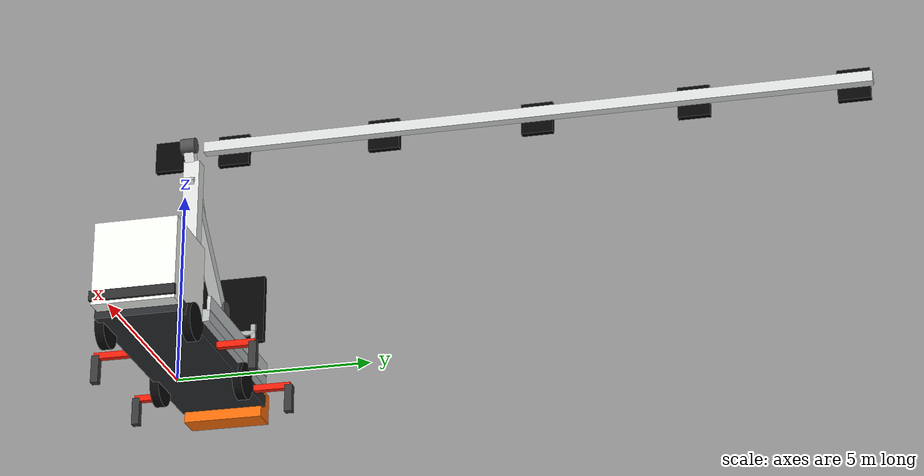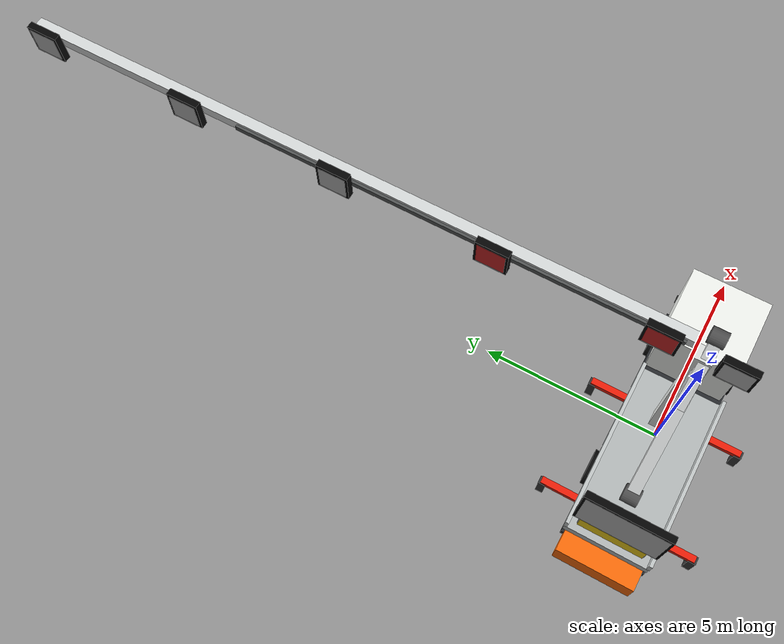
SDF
<?xml version="1.0"?>
<sdf version="1.6">
  <model name="lcs_5004">
    <!-- Keep the deployed vehicle out of physics while allowing Gazebo's
         translate / rotate manipulators to select and reposition the model. -->
    <static>false</static>
    <link name="vehicle">
      <kinematic>true</kinematic>
      <gravity>false</gravity>
      <!-- 4.5 t cab-over truck: official overall width/length are preserved. -->
      <collision name="chassis_collision">
        <pose>-0.35 0 0.70 0 0 0</pose>
        <geometry><box><size>6.70 2.24 0.30</size></box></geometry>
      </collision>
      <visual name="chassis_visual">
        <pose>-0.35 0 0.70 0 0 0</pose>
        <geometry><box><size>6.70 2.24 0.30</size></box></geometry>
        <material><ambient>0.10 0.11 0.12 1</ambient><diffuse>0.16 0.17 0.18 1</diffuse></material>
      </visual>

      <collision name="cab_collision">
        <pose>2.40 0 1.80 0 0 0</pose>
        <geometry><box><size>2.10 2.12 2.15</size></box></geometry>
      </collision>
      <visual name="cab_visual">
        <pose>2.40 0 1.80 0 0 0</pose>
        <geometry><box><size>2.10 2.12 2.15</size></box></geometry>
        <material><ambient>0.72 0.73 0.71 1</ambient><diffuse>0.96 0.97 0.95 1</diffuse><specular>0.20 0.20 0.20 1</specular></material>
      </visual>
      <visual name="front_windshield">
        <pose>1.94 0 2.30 0 0 0</pose>
        <geometry><box><size>0.025 1.92 0.78</size></box></geometry>
        <material><ambient>0.03 0.07 0.09 1</ambient><diffuse>0.08 0.18 0.23 1</diffuse><specular>0.60 0.60 0.60 1</specular></material>
      </visual>
      <visual name="left_window">
        <pose>2.54 -1.071 2.30 0 0 0</pose>
        <geometry><box><size>1.20 0.025 0.76</size></box></geometry>
        <material><ambient>0.03 0.07 0.09 1</ambient><diffuse>0.08 0.18 0.23 1</diffuse><specular>0.60 0.60 0.60 1</specular></material>
      </visual>
      <visual name="front_bumper">
        <pose>3.48 0 0.93 0 0 0</pose>
        <geometry><box><size>0.12 2.18 0.25</size></box></geometry>
        <material><ambient>0.10 0.10 0.10 1</ambient><diffuse>0.18 0.18 0.18 1</diffuse></material>
      </visual>

      <collision name="flatbed_collision">
        <pose>-1.36 0 1.25 0 0 0</pose>
        <geometry><box><size>4.70 2.24 0.32</size></box></geometry>
      </collision>
      <visual name="flatbed_visual">
        <pose>-1.36 0 1.25 0 0 0</pose>
        <geometry><box><size>4.70 2.24 0.32</size></box></geometry>
        <material><ambient>0.50 0.52 0.52 1</ambient><diffuse>0.72 0.74 0.74 1</diffuse><specular>0.45 0.45 0.45 1</specular></material>
      </visual>
      <visual name="flatbed_rail_left">
        <pose>-1.36 -1.09 1.57 0 0 0</pose>
        <geometry><box><size>4.70 0.09 0.38</size></box></geometry>
        <material><ambient>0.55 0.57 0.57 1</ambient><diffuse>0.78 0.80 0.80 1</diffuse></material>
      </visual>
      <visual name="flatbed_rail_right">
        <pose>-1.36 1.09 1.57 0 0 0</pose>
        <geometry><box><size>4.70 0.09 0.38</size></box></geometry>
        <material><ambient>0.55 0.57 0.57 1</ambient><diffuse>0.78 0.80 0.80 1</diffuse></material>
      </visual>

      <!-- Wheels; cylinder axes are aligned with vehicle Y. -->
      <visual name="wheel_front_left">
        <pose>2.25 -1.10 0.55 1.570796 0 0</pose>
        <geometry><cylinder><radius>0.48</radius><length>0.24</length></cylinder></geometry>
        <material><ambient>0.02 0.02 0.02 1</ambient><diffuse>0.04 0.04 0.04 1</diffuse></material>
      </visual>
      <visual name="wheel_front_right">
        <pose>2.25 1.10 0.55 1.570796 0 0</pose>
        <geometry><cylinder><radius>0.48</radius><length>0.24</length></cylinder></geometry>
        <material><ambient>0.02 0.02 0.02 1</ambient><diffuse>0.04 0.04 0.04 1</diffuse></material>
      </visual>
      <visual name="wheel_rear_left">
        <pose>-1.80 -1.10 0.55 1.570796 0 0</pose>
        <geometry><cylinder><radius>0.48</radius><length>0.24</length></cylinder></geometry>
        <material><ambient>0.02 0.02 0.02 1</ambient><diffuse>0.04 0.04 0.04 1</diffuse></material>
      </visual>
      <visual name="wheel_rear_right">
        <pose>-1.80 1.10 0.55 1.570796 0 0</pose>
        <geometry><cylinder><radius>0.48</radius><length>0.24</length></cylinder></geometry>
        <material><ambient>0.02 0.02 0.02 1</ambient><diffuse>0.04 0.04 0.04 1</diffuse></material>
      </visual>
      <visual name="hub_front_left">
        <pose>2.25 -1.235 0.55 1.570796 0 0</pose>
        <geometry><cylinder><radius>0.18</radius><length>0.03</length></cylinder></geometry>
        <material><ambient>0.45 0.45 0.45 1</ambient><diffuse>0.65 0.65 0.65 1</diffuse></material>
      </visual>
      <visual name="hub_rear_left">
        <pose>-1.80 -1.235 0.55 1.570796 0 0</pose>
        <geometry><cylinder><radius>0.18</radius><length>0.03</length></cylinder></geometry>
        <material><ambient>0.45 0.45 0.45 1</ambient><diffuse>0.65 0.65 0.65 1</diffuse></material>
      </visual>

      <!-- Rear impact attenuator and warning chevrons. -->
      <collision name="attenuator_collision">
        <pose>-3.92 0 0.66 0 0 0</pose>
        <geometry><box><size>0.66 2.08 0.78</size></box></geometry>
      </collision>
      <visual name="attenuator_orange">
        <pose>-3.92 0 0.66 0 0 0</pose>
        <geometry><box><size>0.66 2.08 0.78</size></box></geometry>
        <material><ambient>0.65 0.24 0.02 1</ambient><diffuse>1.00 0.43 0.04 1</diffuse></material>
      </visual>
      <visual name="rear_warning_panel">
        <pose>-3.47 0 1.72 0 0 0</pose>
        <geometry><box><size>0.12 1.72 0.64</size></box></geometry>
        <material><ambient>0.75 0.65 0.08 1</ambient><diffuse>0.98 0.84 0.10 1</diffuse></material>
      </visual>

      <!-- Four deployed outriggers. -->
      <visual name="outrigger_fl_arm">
        <pose>0.30 -1.58 0.69 0 0 0</pose>
        <geometry><box><size>0.18 1.05 0.16</size></box></geometry>
        <material><ambient>0.70 0.08 0.03 1</ambient><diffuse>0.95 0.12 0.04 1</diffuse></material>
      </visual>
      <visual name="outrigger_fr_arm">
        <pose>0.30 1.58 0.69 0 0 0</pose>
        <geometry><box><size>0.18 1.05 0.16</size></box></geometry>
        <material><ambient>0.70 0.08 0.03 1</ambient><diffuse>0.95 0.12 0.04 1</diffuse></material>
      </visual>
      <visual name="outrigger_rl_arm">
        <pose>-2.75 -1.58 0.69 0 0 0</pose>
        <geometry><box><size>0.18 1.05 0.16</size></box></geometry>
        <material><ambient>0.70 0.08 0.03 1</ambient><diffuse>0.95 0.12 0.04 1</diffuse></material>
      </visual>
      <visual name="outrigger_rr_arm">
        <pose>-2.75 1.58 0.69 0 0 0</pose>
        <geometry><box><size>0.18 1.05 0.16</size></box></geometry>
        <material><ambient>0.70 0.08 0.03 1</ambient><diffuse>0.95 0.12 0.04 1</diffuse></material>
      </visual>
      <visual name="outrigger_fl_leg">
        <pose>0.30 -2.06 0.34 0 0 0</pose>
        <geometry><box><size>0.20 0.20 0.72</size></box></geometry>
        <material><ambient>0.12 0.12 0.12 1</ambient><diffuse>0.22 0.22 0.22 1</diffuse></material>
      </visual>
      <visual name="outrigger_fr_leg">
        <pose>0.30 2.06 0.34 0 0 0</pose>
        <geometry><box><size>0.20 0.20 0.72</size></box></geometry>
        <material><ambient>0.12 0.12 0.12 1</ambient><diffuse>0.22 0.22 0.22 1</diffuse></material>
      </visual>
      <visual name="outrigger_rl_leg">
        <pose>-2.75 -2.06 0.34 0 0 0</pose>
        <geometry><box><size>0.20 0.20 0.72</size></box></geometry>
        <material><ambient>0.12 0.12 0.12 1</ambient><diffuse>0.22 0.22 0.22 1</diffuse></material>
      </visual>
      <visual name="outrigger_rr_leg">
        <pose>-2.75 2.06 0.34 0 0 0</pose>
        <geometry><box><size>0.20 0.20 0.72</size></box></geometry>
        <material><ambient>0.12 0.12 0.12 1</ambient><diffuse>0.22 0.22 0.22 1</diffuse></material>
      </visual>

      <!-- Vehicle frame: +X forward, +Y left, +Z up. The boom deploys to vehicle-left (+Y). -->
      <collision name="mast_collision">
        <pose>-0.15 0.15 3.70 0 0 0</pose>
        <geometry><box><size>0.38 0.42 4.60</size></box></geometry>
      </collision>
      <visual name="mast_visual">
        <pose>-0.15 0.15 3.70 0 0 0</pose>
        <geometry><box><size>0.38 0.42 4.60</size></box></geometry>
        <material><ambient>0.62 0.63 0.62 1</ambient><diffuse>0.88 0.89 0.88 1</diffuse></material>
      </visual>
      <visual name="lift_arm_lower">
        <pose>-1.35 0.10 4.25 0 -0.75 0</pose>
        <geometry><box><size>3.80 0.30 0.30</size></box></geometry>
        <material><ambient>0.56 0.57 0.57 1</ambient><diffuse>0.82 0.83 0.83 1</diffuse></material>
      </visual>
      <visual name="lift_arm_upper">
        <pose>-0.40 0.10 5.55 0 -1.00 0</pose>
        <geometry><box><size>2.00 0.26 0.28</size></box></geometry>
        <material><ambient>0.66 0.67 0.67 1</ambient><diffuse>0.91 0.92 0.92 1</diffuse></material>
      </visual>
      <visual name="mast_pivot_lower">
        <pose>-2.73 0.10 2.96 1.570796 0 0</pose>
        <geometry><cylinder><radius>0.22</radius><length>0.40</length></cylinder></geometry>
        <material><ambient>0.20 0.20 0.20 1</ambient><diffuse>0.32 0.32 0.32 1</diffuse></material>
      </visual>
      <visual name="mast_pivot_upper">
        <pose>0.14 0.10 6.38 1.570796 0 0</pose>
        <geometry><cylinder><radius>0.20</radius><length>0.38</length></cylinder></geometry>
        <material><ambient>0.20 0.20 0.20 1</ambient><diffuse>0.32 0.32 0.32 1</diffuse></material>
      </visual>

      <collision name="boom_collision">
        <pose>-0.12 9.05 6.38 0 0 0</pose>
        <geometry><box><size>0.28 17.20 0.28</size></box></geometry>
      </collision>
      <visual name="boom_visual">
        <pose>-0.12 9.05 6.38 0 0 0</pose>
        <geometry><box><size>0.28 17.20 0.28</size></box></geometry>
        <material><ambient>0.58 0.59 0.59 1</ambient><diffuse>0.86 0.87 0.87 1</diffuse><specular>0.35 0.35 0.35 1</specular></material>
      </visual>
      <visual name="boom_inner_visual">
        <pose>-0.29 6.25 6.38 0 0 0</pose>
        <geometry><box><size>0.08 11.20 0.14</size></box></geometry>
        <material><ambient>0.20 0.21 0.21 1</ambient><diffuse>0.33 0.34 0.34 1</diffuse></material>
      </visual>

      <!-- Five 700 mm indicators are centered on, and mounted in front of, the boom. -->
      <!-- Mesh faces keep Gazebo from treating the vehicle as a plane. Each
           indicator has one surface; its material selects the displayed signal. -->
      <visual name="panel_1_housing"><pose>-0.42 17.15 6.38 0 0 0</pose><geometry><box><size>0.18 0.82 0.82</size></box></geometry><material><ambient>0.01 0.01 0.01 1</ambient><diffuse>0.02 0.02 0.02 1</diffuse></material></visual>
      <visual name="panel_1_signal"><pose>-0.521 17.15 6.38 0 -1.570796 0</pose><geometry><mesh><uri>model://lcs_5004/meshes/signal_face.dae</uri><scale>0.70 0.70 1</scale></mesh></geometry><material><script><uri>model://lcs_5004/materials/scripts</uri><uri>model://lcs_5004/materials/textures</uri><name>LCS5004/ArrowDown</name></script></material></visual>
      <visual name="panel_2_housing"><pose>-0.42 13.15 6.38 0 0 0</pose><geometry><box><size>0.18 0.82 0.82</size></box></geometry><material><ambient>0.01 0.01 0.01 1</ambient><diffuse>0.02 0.02 0.02 1</diffuse></material></visual>
      <visual name="panel_2_signal"><pose>-0.521 13.15 6.38 0 -1.570796 0</pose><geometry><mesh><uri>model://lcs_5004/meshes/signal_face.dae</uri><scale>0.70 0.70 1</scale></mesh></geometry><material><script><uri>model://lcs_5004/materials/scripts</uri><uri>model://lcs_5004/materials/textures</uri><name>LCS5004/ArrowDown</name></script></material></visual>
      <visual name="panel_3_housing"><pose>-0.42 9.15 6.38 0 0 0</pose><geometry><box><size>0.18 0.82 0.82</size></box></geometry><material><ambient>0.01 0.01 0.01 1</ambient><diffuse>0.02 0.02 0.02 1</diffuse></material></visual>
      <visual name="panel_3_signal"><pose>-0.521 9.15 6.38 0 -1.570796 0</pose><geometry><mesh><uri>model://lcs_5004/meshes/signal_face.dae</uri><scale>0.70 0.70 1</scale></mesh></geometry><material><script><uri>model://lcs_5004/materials/scripts</uri><uri>model://lcs_5004/materials/textures</uri><name>LCS5004/ArrowDown</name></script></material></visual>
      <visual name="panel_4_housing"><pose>-0.42 5.15 6.38 0 0 0</pose><geometry><box><size>0.18 0.82 0.82</size></box></geometry><material><ambient>0.01 0.01 0.01 1</ambient><diffuse>0.02 0.02 0.02 1</diffuse></material></visual>
      <visual name="panel_4_signal"><pose>-0.521 5.15 6.38 0 -1.570796 0</pose><geometry><mesh><uri>model://lcs_5004/meshes/signal_face.dae</uri><scale>0.70 0.70 1</scale></mesh></geometry><material><script><uri>model://lcs_5004/materials/scripts</uri><uri>model://lcs_5004/materials/textures</uri><name>LCS5004/RedX</name></script></material></visual>
      <visual name="panel_5_housing"><pose>-0.42 1.15 6.38 0 0 0</pose><geometry><box><size>0.18 0.82 0.82</size></box></geometry><material><ambient>0.01 0.01 0.01 1</ambient><diffuse>0.02 0.02 0.02 1</diffuse></material></visual>
      <visual name="panel_5_signal"><pose>-0.521 1.15 6.38 0 -1.570796 0</pose><geometry><mesh><uri>model://lcs_5004/meshes/signal_face.dae</uri><scale>0.70 0.70 1</scale></mesh></geometry><material><script><uri>model://lcs_5004/materials/scripts</uri><uri>model://lcs_5004/materials/textures</uri><name>LCS5004/RedX</name></script></material></visual>

      <!-- The speed panel is vehicle-side; the large VMS has its own rear support. -->
      <visual name="speed_housing"><pose>-0.42 -0.55 6.38 0 0 0</pose><geometry><box><size>0.18 0.82 0.82</size></box></geometry><material><ambient>0.01 0.01 0.01 1</ambient><diffuse>0.02 0.02 0.02 1</diffuse></material></visual>
      <visual name="speed_60"><pose>-0.521 -0.55 6.38 0 -1.570796 0</pose><geometry><mesh><uri>model://lcs_5004/meshes/signal_face.dae</uri><scale>0.70 0.70 1</scale></mesh></geometry><material><script><uri>model://lcs_5004/materials/scripts</uri><uri>model://lcs_5004/materials/textures</uri><name>LCS5004/Speed60</name></script></material></visual>
      <visual name="vms_support_left"><pose>-3.45 0.82 2.02 0 0 0</pose><geometry><box><size>0.12 0.12 1.52</size></box></geometry><material><ambient>0.46 0.47 0.47 1</ambient><diffuse>0.68 0.69 0.69 1</diffuse></material></visual>
      <visual name="vms_support_right"><pose>-3.45 -0.82 2.02 0 0 0</pose><geometry><box><size>0.12 0.12 1.52</size></box></geometry><material><ambient>0.46 0.47 0.47 1</ambient><diffuse>0.68 0.69 0.69 1</diffuse></material></visual>
      <visual name="vms_support_cross"><pose>-3.45 0 2.55 0 0 0</pose><geometry><box><size>0.12 1.76 0.12</size></box></geometry><material><ambient>0.46 0.47 0.47 1</ambient><diffuse>0.68 0.69 0.69 1</diffuse></material></visual>
      <collision name="vms_collision"><pose>-3.55 0 3.25 0 0 0</pose><geometry><box><size>0.18 2.16 1.82</size></box></geometry></collision>
      <visual name="vms_housing"><pose>-3.55 0 3.25 0 0 0</pose><geometry><box><size>0.18 2.16 1.82</size></box></geometry><material><ambient>0.01 0.01 0.01 1</ambient><diffuse>0.02 0.02 0.02 1</diffuse></material></visual>
      <visual name="vms_face"><pose>-3.651 0 3.25 0 -1.570796 0</pose><geometry><mesh><uri>model://lcs_5004/meshes/signal_face.dae</uri><scale>1.68 2.04 1</scale></mesh></geometry><material><script><uri>model://lcs_5004/materials/scripts</uri><uri>model://lcs_5004/materials/textures</uri><name>LCS5004/VMS</name></script></material></visual>
    </link>
  </model>
</sdf>
